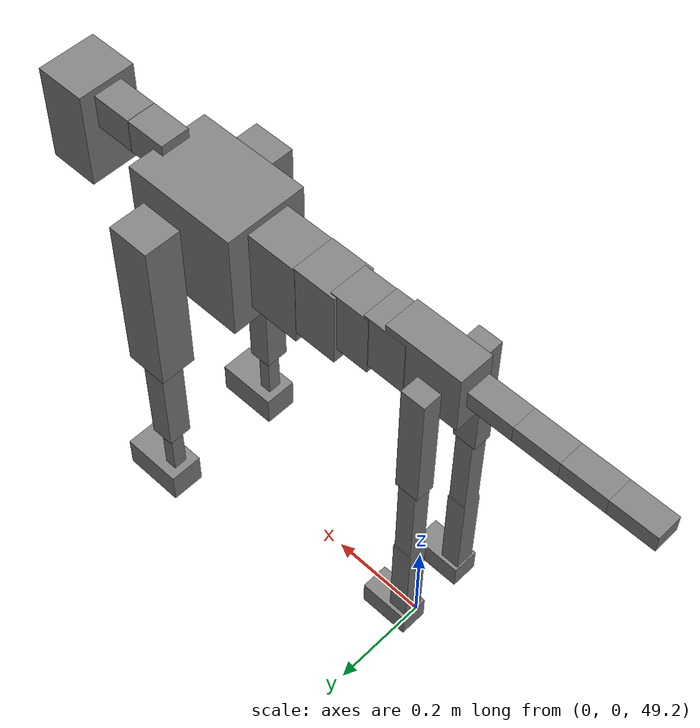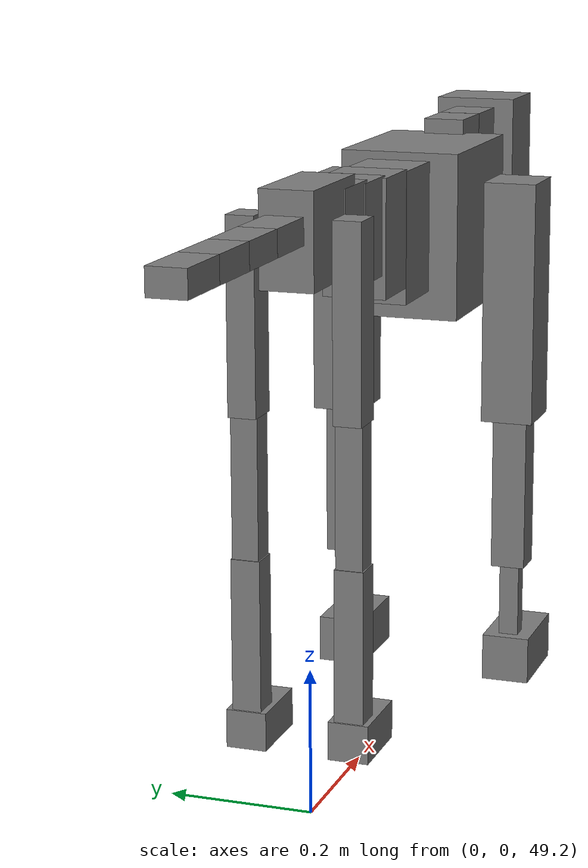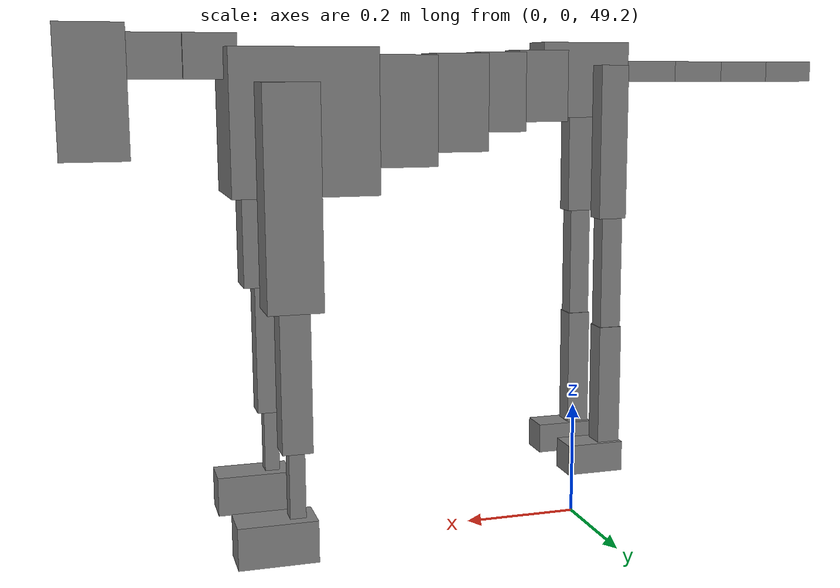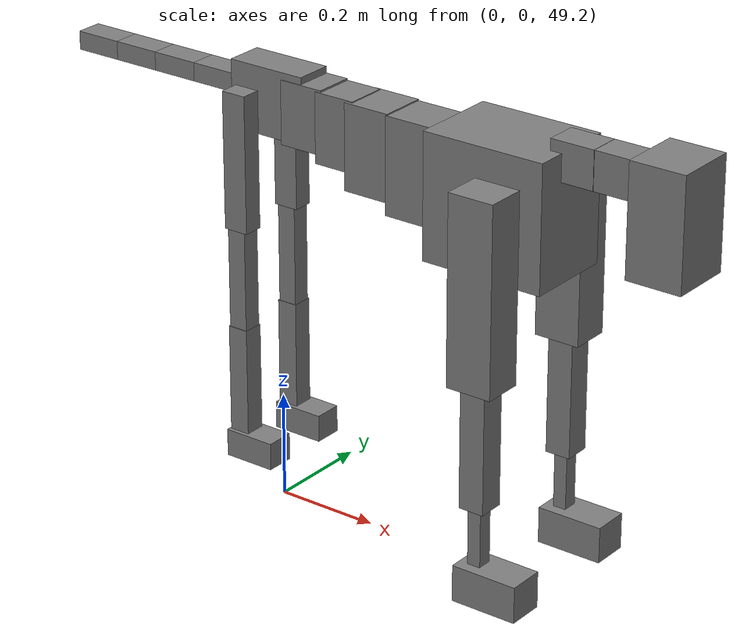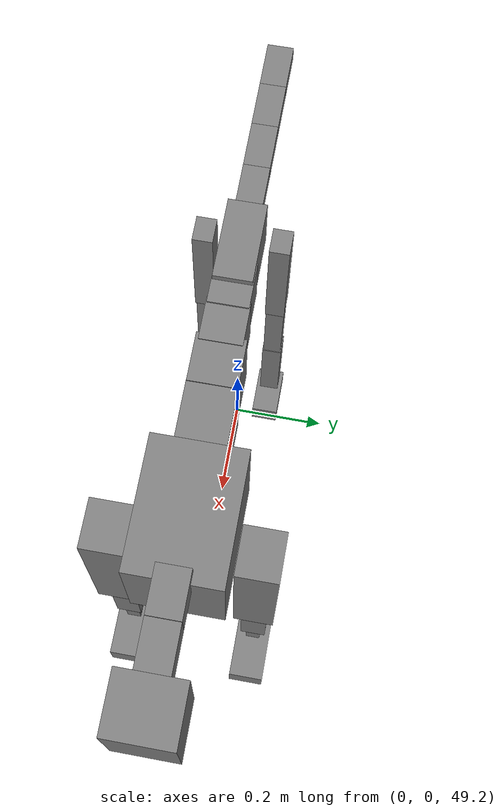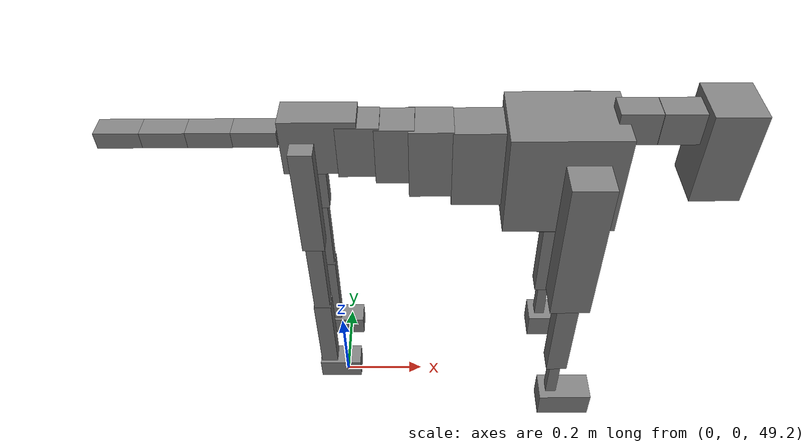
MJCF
<mujoco model="dog">

    <default>
        <joint armature="0.02" stiffness="1" damping="0.2" limited="true"/>
        <geom condim="3" friction="1 0.05 0.05" margin="0.01"/>
        <motor ctrllimited="true" ctrlrange="-1.0 1.0" forcelimited="true" gear="50"/>
    </default>

    <compiler inertiafromgeom="true" angle="radian"/>

    <option timestep="0.016" iterations="50" tolerance="1e-10" solver="Newton" jacobian="dense" cone="pyramidal"/>

    <size nconmax="20000" njmax="60000" nstack="5000000"/>
    <visual>
        <map force="0.1" zfar="30"/>
        <rgba haze="0.15 0.25 0.35 1"/>
        <quality shadowsize="2048"/>
        <global offwidth="800" offheight="800"/>
    </visual>

    <asset>
        <texture type="skybox" builtin="gradient" rgb1="0.3 0.5 0.7" rgb2="0 0 0" width="512" height="512"/>
        <texture name="texplane" type="2d" builtin="checker" rgb1=".2 .3 .4" rgb2=".1 0.15 0.2" width="512" height="512"
                 mark="cross" markrgb=".8 .8 .8"/>
        <texture name="texgeom" type="cube" builtin="flat" mark="cross" width="127" height="1278" rgb1="0.8 0.6 0.4"
                 rgb2="0.8 0.6 0.4" markrgb="1 1 1" random="0.01"/>

        <material name="matplane" reflectance="0.3" texture="texplane" texrepeat="1 1" texuniform="true"/>
        <material name="matgeom" texture="texgeom" texuniform="true" rgba="0.8 0.6 .4 1"/>
    </asset>

    <worldbody>
        <geom name="floor" pos="0 0 0" size="0 0 .25" type="plane" material="matplane" condim="3"/>

        <light directional="false" diffuse=".2 .2 .2" specular="0 0 0" pos="0 0 5" dir="0 0 -1" castshadow="false"/>
        <light mode="targetbodycom" target="torso" directional="false" diffuse=".8 .8 .8" specular="0.3 0.3 0.3"
               pos="0 0 4.0" dir="0 0 -1"/>

        <body name="root" pos="0 0 50">
            <freejoint name="root_1"/>
            <geom type="box" pos="0 0 -0.02" size="0.0774  0.0358  0.063" density="2030"/>

            <body name="spine1" pos="0.054 0 0">
                <joint name="spine1_y" axis="0 1 0" range="0 0.7" limited="true"/>
                <geom type="box" pos="0.02375 0 -0.03" size="0.04375  0.0375  0.05985" density="2030"/>

                <body name="spine2" pos="0.0612 0 0">
                    <joint name="spine2_y" axis="0 1 0" range="-0.15 0.15" limited="true"/>
                    <geom type="box" pos="0.03555  0  -0.04" size="0.04055  0.039  0.06615" density="2030"/>

                    <body name="spine3" pos="0.0730 0 0">
                        <joint name="spine3_y" axis="0 1 0" range="-0.15 0.15" limited="true"/>
                        <geom type="box" pos="0.03555  0  -0.057" size="0.04555  0.0445  0.081" density="2030"/>

                        <body name="spine4" pos="0.0780 0 0">
                            <joint name="spine4_y" axis="0 1 0" range="-0.15 0.15" limited="true"/>
                            <geom type="box" pos="0.05265  0  -0.07" size="0.05265  0.045  0.09135" density="2030"/>

                            <body name="torso" pos="0.1082 0 0">
                                <joint name="torso_y" axis="0 1 0" range="-0.15 0.15" limited="true"/>
                                <geom type="box" pos="0.11925  0  -0.085" size="0.11925  0.085  0.11745"
                                      density="2030"/>

                                <body name="neck1" pos="0.2160  0   0.0180">
                                    <joint name="neck1_y" axis="0 1 0" range="-1.2  -1" limited="true"/>
                                    <geom type="box" pos="0.0423  0  0" size="0.0423  0.03  0.036" density="2325"/>

                                    <body name="neck2" pos="0.0853  0  0">
                                        <joint name="neck2_y" axis="0 1 0" range="0.1  0" limited="true"/>
                                        <geom type="box" pos="0.0423  0  0" size="0.0423  0.03  0.036" density="2325"/>

                                        <body name="head" pos="0.0853  0  0">
                                            <joint name="head_y" axis="0 1 0" range="-0.3  -0.2" limited="true"/>
                                            <geom type="box" pos="0.0531  0  -0.055" size="0.0531  0.06  0.1044"
                                                  density="4030"/>

                                        </body>
                                    </body>
                                </body>

                                <body name="front_shoulder" pos="0.156  0   -0.0480">
                                    <joint name="front_shoulder_y" axis="0 1 0" range="-1 1.5" limited="true"/>
                                    <geom type="box" pos="0 0.13 -0.1493" size="0.0443  0.0379  0.1760" density="1158"/>
                                    <geom type="box" pos="0 -0.13 -0.1493" size="0.0443  0.0379  0.1760"
                                          density="1158"/>

                                    <body name="front_elbow" pos="0  0  -0.2987">
                                        <joint name="front_elbow_y" axis="0 1 0" range="-2 0" limited="true"/>
                                        <geom type="box" pos="0 0.13 -0.1265" size="0.0245  0.0250  0.1265"
                                              density="1081"/>
                                        <geom type="box" pos="0 -0.13 -0.1265" size="0.0245  0.0250  0.1265"
                                              density="1081"/>

                                        <body name="front_wrist" pos="0  0  -0.2530">
                                            <joint name="front_wrist_y" axis="0 1 0" range="-0.2 0" limited="true"/>
                                            <geom type="box" pos="0 0.13 -0.0619" size="0.0129  0.0144  0.0751"
                                                  density="1664"/>
                                            <geom type="box" pos="0 -0.13 -0.0619" size="0.0129  0.0144  0.0751"
                                                  density="1664"/>

                                            <body name="front_finger_end" pos="0  0  -0.1238">
                                                <joint name="front_finger_y" axis="0 1 0" range="-0.4 1"
                                                       limited="true"/>
                                                <geom type="box" pos="0.0351  0.13  -0.0195"
                                                      size="0.0644  0.0351  0.0345" density="1515"/>
                                                <geom type="box" pos="0.0351  -0.13  -0.0195"
                                                      size="0.0644  0.0351  0.0345" density="1515"/>

                                            </body>

                                        </body>
                                    </body>
                                </body>

                            </body>
                        </body>
                    </body>
                </body>
            </body>

            <body name="back_hip" pos="-0.03 0 -0.018">
                <joint name="back_hip_y" axis="0 1 0" range="-1.5 0.3" limited="true"/>
                <geom type="box" pos="0 0.07 -0.1062" size="0.0241  0.0189  0.1290" density="1154"/>
                <geom type="box" pos="0 -0.07 -0.1062" size="0.0241  0.0189  0.1290" density="1154"/>

                <body name="back_knee" pos="0  0  -0.2123">
                    <joint name="back_knee_y" axis="0 1 0" range="0 2.8" limited="true"/>
                    <geom type="box" pos="0 0.07 -0.1113" size="0.0181  0.0179  0.1269" density="1227"/>
                    <geom type="box" pos="0 -0.07 -0.1113" size="0.0181  0.0179  0.1269" density="1227"/>

                    <body name="back_ankle" pos="0  0  -0.2226">
                        <joint name="back_ankle_y" axis="0 1 0" range="-2.2 0" limited="true"/>
                        <geom type="box" pos="0 0.07 -0.1042" size="0.0197  0.0197  0.1155" density="1284"/>
                        <geom type="box" pos="0 -0.07 -0.1042" size="0.0197  0.0197  0.1155" density="1284"/>

                        <body name="back_toe_end" pos="0  0  -0.2085">
                            <joint name="back_toe_y" axis="0 1 0" range="-0.4 1" limited="true"/>
                            <geom type="box" pos="0.0273  0.07  -0.0109" size="0.0500  0.0273  0.0259" density="1515"/>
                            <geom type="box" pos="0.0273  -0.07  -0.0109" size="0.0500  0.0273  0.0259" density="1515"/>

                        </body>
                    </body>
                </body>
            </body>

            <body name="tail1" pos="-0.074 0 -0.006">
                <joint name="tail1_y" axis="0 1 0" range="-0.2 0.2" limited="true"/>
                <geom type="box" pos="-0.0536  0  0" size="0.045  0.025  0.0175" density="1587"/>

                <body name="tail2" pos="-0.09 0 0">
                    <joint name="tail2_y" axis="0 1 0" range="-0.2 0.2" limited="true"/>
                    <geom type="box" pos="-0.0536  0  0" size="0.045  0.025  0.0175" density="1587"/>

                    <body name="tail3" pos="-0.09 0 0">
                        <joint name="tail3_y" axis="0 1 0" range="-0.2 0.2" limited="true"/>
                        <geom type="box" pos="-0.0536  0  0" size="0.045  0.025  0.0175" density="1587"/>

                        <body name="tail4" pos="-0.09 0 0">
                            <joint name="tail4_y" axis="0 1 0" range="-0.2 0.2" limited="true"/>
                            <geom type="box" pos="-0.0536  0  0" size="0.045  0.025  0.0175" density="1587"/>

                        </body>
                    </body>
                </body>
            </body>
        </body>
    </worldbody>

    <actuator>
        <motor joint="spine1_y" forcerange="-150 150     "/>
        <motor joint="spine2_y" forcerange="-150 150     "/>
        <motor joint="spine3_y" forcerange="-150 150     "/>
        <motor joint="spine4_y" forcerange="-150 150     "/>
        <motor joint="torso_y" forcerange="-150 150     "/>
        <motor joint="neck1_y" forcerange="-100 100       "/>
        <motor joint="neck2_y" forcerange="-100 100       "/>
        <motor joint="head_y" forcerange="-150 150       "/>
        <motor joint="front_shoulder_y" forcerange="-177.99 174.42"/>
        <motor joint="front_elbow_y" forcerange="-106.78 175.03"/>
        <motor joint="front_wrist_y" forcerange="-52.54 62.36"/>
        <motor joint="front_finger_y" forcerange="-84.01 63.22"/>
        <motor joint="back_hip_y" forcerange="-234.72 217.31"/>
        <motor joint="back_knee_y" forcerange="-244.73 215.09"/>
        <motor joint="back_angle_y" forcerange="-90.94 124.46"/>
        <motor joint="back_toe_y" forcerange="-63.43 74.85"/>
        <motor joint="tail1_y" forcerange="-50 50     "/>
        <motor joint="tail2_y" forcerange="-50 50     "/>
        <motor joint="tail3_y" forcerange="-50 50     "/>
        <motor joint="tail4_y" forcerange="-50 50     "/>
    </actuator>
</mujoco>
